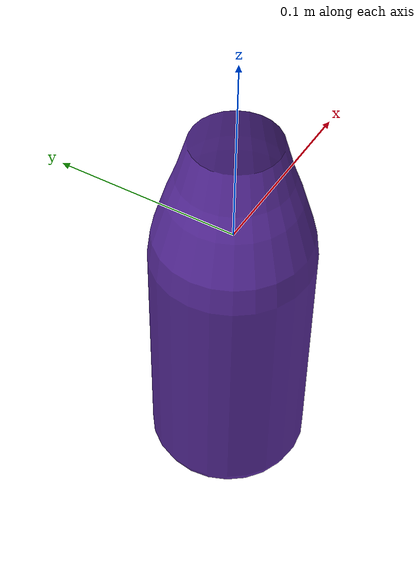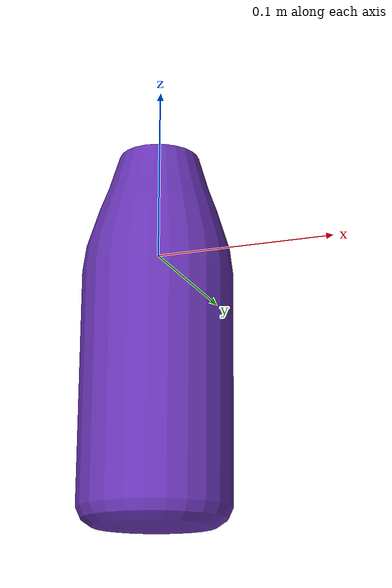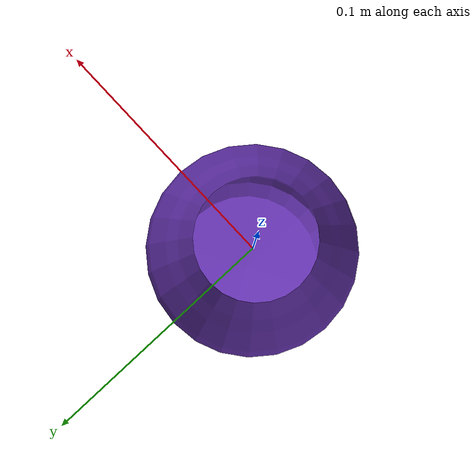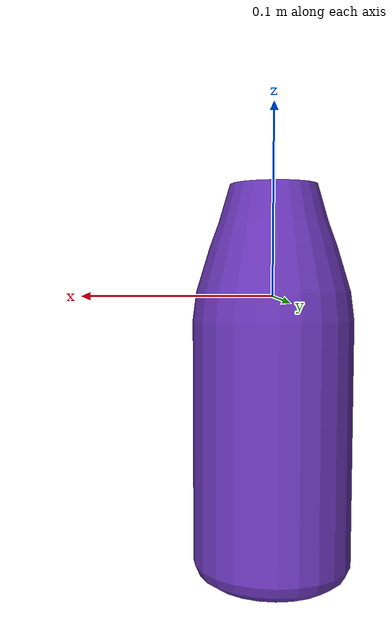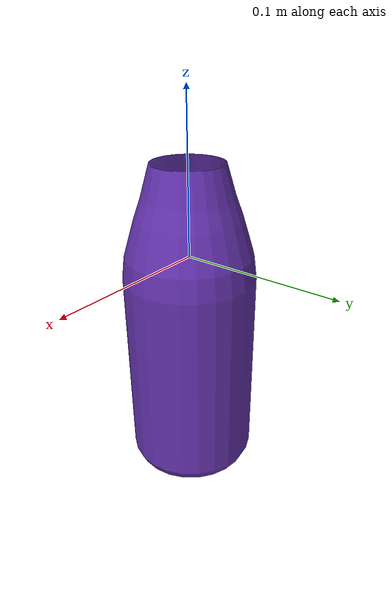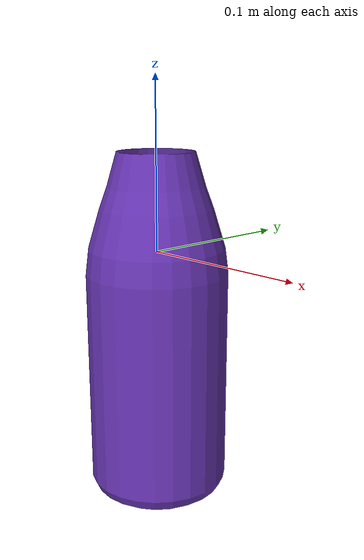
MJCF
<mujoco model="top_watertight_tiny">
  <default>
    <default group="2" type="mesh" contype="0" conaffinity="0">
      <geom group="2" type="mesh" contype="0" conaffinity="0"/>
    </default>
    <default group="3" type="mesh">
      <geom group="3" type="mesh"/>
    </default>
  </default>
  <asset>
    <mesh file="top_watertight_tiny.obj"/>
    <mesh file="top_watertight_tiny_collision_0.obj"/>
    <mesh file="top_watertight_tiny_collision_1.obj"/>
    <mesh file="top_watertight_tiny_collision_2.obj"/>
    <mesh file="top_watertight_tiny_collision_3.obj"/>
    <mesh file="top_watertight_tiny_collision_4.obj"/>
    <mesh file="top_watertight_tiny_collision_5.obj"/>
    <mesh file="top_watertight_tiny_collision_6.obj"/>
    <mesh file="top_watertight_tiny_collision_7.obj"/>
    <mesh file="top_watertight_tiny_collision_8.obj"/>
    <mesh file="top_watertight_tiny_collision_9.obj"/>
    <mesh file="top_watertight_tiny_collision_10.obj"/>
    <mesh file="top_watertight_tiny_collision_11.obj"/>
    <mesh file="top_watertight_tiny_collision_12.obj"/>
    <mesh file="top_watertight_tiny_collision_13.obj"/>
    <mesh file="top_watertight_tiny_collision_14.obj"/>
    <mesh file="top_watertight_tiny_collision_15.obj"/>
    <mesh file="top_watertight_tiny_collision_16.obj"/>
    <mesh file="top_watertight_tiny_collision_17.obj"/>
    <mesh file="top_watertight_tiny_collision_18.obj"/>
    <mesh file="top_watertight_tiny_collision_19.obj"/>
    <mesh file="top_watertight_tiny_collision_20.obj"/>
    <mesh file="top_watertight_tiny_collision_21.obj"/>
    <mesh file="top_watertight_tiny_collision_22.obj"/>
    <mesh file="top_watertight_tiny_collision_23.obj"/>
    <mesh file="top_watertight_tiny_collision_24.obj"/>
    <mesh file="top_watertight_tiny_collision_25.obj"/>
    <mesh file="top_watertight_tiny_collision_26.obj"/>
    <mesh file="top_watertight_tiny_collision_27.obj"/>
    <mesh file="top_watertight_tiny_collision_28.obj"/>
    <mesh file="top_watertight_tiny_collision_29.obj"/>
    <mesh file="top_watertight_tiny_collision_30.obj"/>
    <mesh file="top_watertight_tiny_collision_31.obj"/>
    <mesh file="top_watertight_tiny_collision_32.obj"/>
    <mesh file="top_watertight_tiny_collision_33.obj"/>
    <mesh file="top_watertight_tiny_collision_34.obj"/>
  </asset>
  <worldbody>
    <body name="top_watertight_tiny">
      <freejoint/>
      <geom mesh="top_watertight_tiny" group="2" type="mesh" rgba="0.4 0.2 0.7 1" contype="0" conaffinity="0"/>
      <geom mesh="top_watertight_tiny_collision_0" rgba="0.9738559264525701 0.5337209492172882 0.19861902941835907 1" group="3" type="mesh"/>
      <geom mesh="top_watertight_tiny_collision_1" rgba="0.39413652552306055 0.7271618735801437 0.3476619241012544 1" group="3" type="mesh"/>
      <geom mesh="top_watertight_tiny_collision_2" rgba="0.07412613423704395 0.6511715876219647 0.686690603524716 1" group="3" type="mesh"/>
      <geom mesh="top_watertight_tiny_collision_3" rgba="0.09133713154245604 0.7821452830691618 0.6533938736487966 1" group="3" type="mesh"/>
      <geom mesh="top_watertight_tiny_collision_4" rgba="0.9530333933785317 0.23166128603588454 0.3520543809126233 1" group="3" type="mesh"/>
      <geom mesh="top_watertight_tiny_collision_5" rgba="0.7411129441383953 0.29504837082061486 0.852786074730955 1" group="3" type="mesh"/>
      <geom mesh="top_watertight_tiny_collision_6" rgba="0.9830123361096486 0.6379150172404865 0.3505885316255166 1" group="3" type="mesh"/>
      <geom mesh="top_watertight_tiny_collision_7" rgba="0.6242415163558259 0.5008725793006199 0.12455554878553143 1" group="3" type="mesh"/>
      <geom mesh="top_watertight_tiny_collision_8" rgba="0.287084232208501 0.8573439642230989 0.08510092083700826 1" group="3" type="mesh"/>
      <geom mesh="top_watertight_tiny_collision_9" rgba="0.8866160503093553 0.5170332608377072 0.6592623922124261 1" group="3" type="mesh"/>
      <geom mesh="top_watertight_tiny_collision_10" rgba="0.11415598515014069 0.1761473839022467 0.2984783363679566 1" group="3" type="mesh"/>
      <geom mesh="top_watertight_tiny_collision_11" rgba="0.4925214268449788 0.942749009490018 0.7131283208554677 1" group="3" type="mesh"/>
      <geom mesh="top_watertight_tiny_collision_12" rgba="0.6215571992394701 0.288457661769861 0.7245392370082887 1" group="3" type="mesh"/>
      <geom mesh="top_watertight_tiny_collision_13" rgba="0.4896756077365232 0.14476789058865935 0.15206031065150805 1" group="3" type="mesh"/>
      <geom mesh="top_watertight_tiny_collision_14" rgba="0.29437039010668964 0.23827960761558098 0.1799180256123002 1" group="3" type="mesh"/>
      <geom mesh="top_watertight_tiny_collision_15" rgba="0.9489261023803855 0.007698044262403947 0.18685135030394895 1" group="3" type="mesh"/>
      <geom mesh="top_watertight_tiny_collision_16" rgba="0.11067168528007187 0.49295493900146825 0.4043171822307431 1" group="3" type="mesh"/>
      <geom mesh="top_watertight_tiny_collision_17" rgba="0.28389489076703356 0.20043419366291504 0.10643453370870615 1" group="3" type="mesh"/>
      <geom mesh="top_watertight_tiny_collision_18" rgba="0.8428593090388339 0.966587334305474 0.7027854532816847 1" group="3" type="mesh"/>
      <geom mesh="top_watertight_tiny_collision_19" rgba="0.509991584954913 0.974778184802531 0.9173120337305716 1" group="3" type="mesh"/>
      <geom mesh="top_watertight_tiny_collision_20" rgba="0.9516381584837211 0.6916173539910881 0.16605530309972982 1" group="3" type="mesh"/>
      <geom mesh="top_watertight_tiny_collision_21" rgba="0.9773382030140296 0.5392423396827188 0.7945766254847566 1" group="3" type="mesh"/>
      <geom mesh="top_watertight_tiny_collision_22" rgba="0.7199999787723581 0.16934581097258983 0.869384506450687 1" group="3" type="mesh"/>
      <geom mesh="top_watertight_tiny_collision_23" rgba="0.5269935254383796 0.2629110453428025 0.90931322184288 1" group="3" type="mesh"/>
      <geom mesh="top_watertight_tiny_collision_24" rgba="0.5197499049102631 0.9702703242816139 0.24974131176267833 1" group="3" type="mesh"/>
      <geom mesh="top_watertight_tiny_collision_25" rgba="0.12915463850100517 0.3305229496009755 0.008566485712579563 1" group="3" type="mesh"/>
      <geom mesh="top_watertight_tiny_collision_26" rgba="0.18484860801873404 0.13327779096791248 0.2214603218118909 1" group="3" type="mesh"/>
      <geom mesh="top_watertight_tiny_collision_27" rgba="0.4751100295940224 0.07497054983724105 0.5325028518598828 1" group="3" type="mesh"/>
      <geom mesh="top_watertight_tiny_collision_28" rgba="0.6403231524758303 0.4649586356370077 0.05265068598298506 1" group="3" type="mesh"/>
      <geom mesh="top_watertight_tiny_collision_29" rgba="0.3572005129331567 0.6535381506605513 0.2136499025759483 1" group="3" type="mesh"/>
      <geom mesh="top_watertight_tiny_collision_30" rgba="0.8488584965814733 0.9731474160440399 0.4731022551812699 1" group="3" type="mesh"/>
      <geom mesh="top_watertight_tiny_collision_31" rgba="0.6741138243044994 0.18329433716930066 0.6681444988255048 1" group="3" type="mesh"/>
      <geom mesh="top_watertight_tiny_collision_32" rgba="0.9291629245122077 0.2489003633017176 0.7294762004136192 1" group="3" type="mesh"/>
      <geom mesh="top_watertight_tiny_collision_33" rgba="0.504408600488143 0.48494918983962154 0.11692320423307401 1" group="3" type="mesh"/>
      <geom mesh="top_watertight_tiny_collision_34" rgba="0.3136491652962591 0.6274255026395742 0.4985581952887612 1" group="3" type="mesh"/>
    </body>
  </worldbody>
</mujoco>
